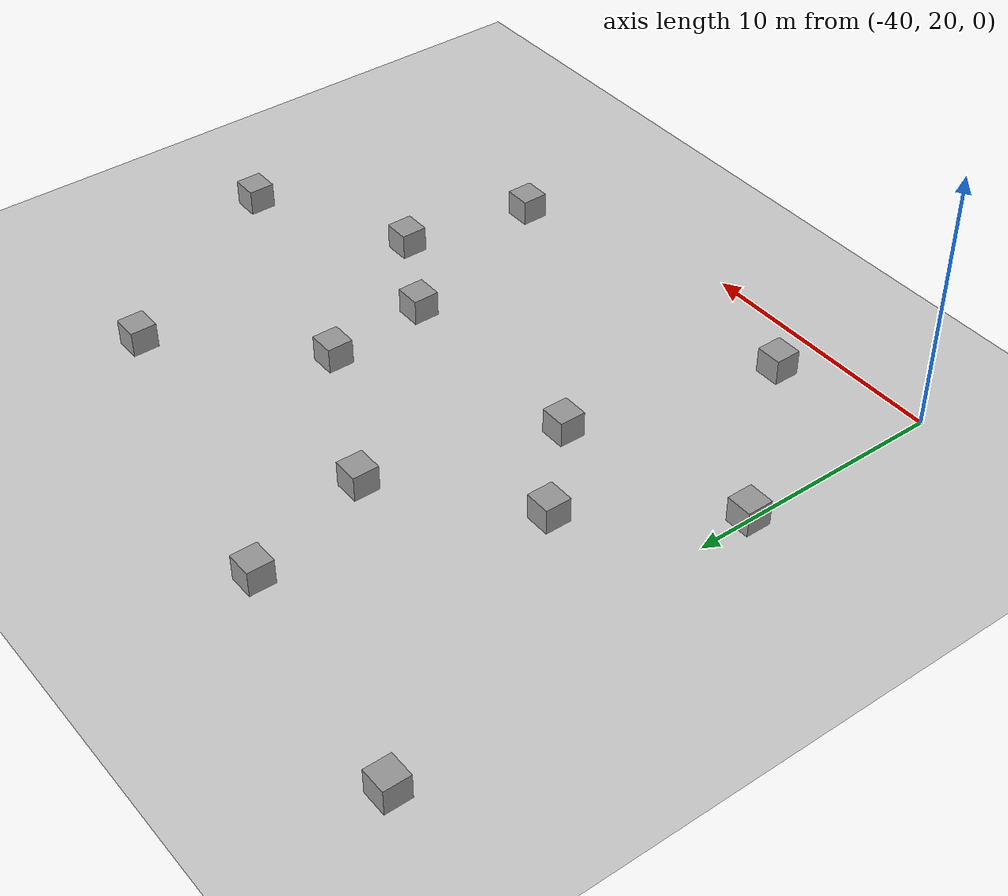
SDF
<sdf version="1.7">
 <world name="default">
  <model name="ground_plane">
   <static>1</static>
   <link name="link">
    <collision name="collision">
     <geometry><plane><normal>0 0 1</normal><size>100 100</size></plane></geometry>
     <surface><friction><ode><mu>100</mu><mu2>50</mu2></ode></friction></surface>
    </collision>
    <visual name="visual">
     <cast_shadows>0</cast_shadows>
     <geometry><plane><normal>0 0 1</normal><size>100 100</size></plane></geometry>
     <material>
      <script><uri>file://media/materials/scripts/gazebo.material</uri><name>Gazebo/Grey</name></script>
     </material>
    </visual>
   </link>
  </model>
  <model name="unit_box_47_clone_7">
   <pose>-20 39 0.499995 -1e-05 0 0</pose>
   <link name="link">
    <inertial>
     <mass>1</mass>
     <inertia>
      <ixx>0.166667</ixx>
      <ixy>0</ixy>
      <ixz>0</ixz>
      <iyy>0.166667</iyy>
      <iyz>0</iyz>
      <izz>0.166667</izz>
     </inertia>
    </inertial>
    <collision name="collision"><geometry><box><size>1 1 1</size></box></geometry></collision>
    <visual name="visual">
     <geometry><box><size>1 1 1</size></box></geometry>
     <material>
      <script><name>Gazebo/Grey</name><uri>file://media/materials/scripts/gazebo.material</uri></script>
     </material>
    </visual>
   </link>
  </model>
  <model name="unit_box_47_clone_8">
   <pose>-33 30 0.499995 0 -1e-05 0</pose>
   <link name="link">
    <inertial>
     <mass>1</mass>
     <inertia>
      <ixx>0.166667</ixx>
      <ixy>0</ixy>
      <ixz>0</ixz>
      <iyy>0.166667</iyy>
      <iyz>0</iyz>
      <izz>0.166667</izz>
     </inertia>
    </inertial>
    <collision name="collision"><geometry><box><size>1 1 1</size></box></geometry></collision>
    <visual name="visual">
     <geometry><box><size>1 1 1</size></box></geometry>
     <material>
      <script><name>Gazebo/Grey</name><uri>file://media/materials/scripts/gazebo.material</uri></script>
     </material>
    </visual>
   </link>
  </model>
  <model name="unit_box_47_clone_10">
   <pose>-15 31 0.499995 0 -1e-05 0</pose>
   <link name="link">
    <inertial>
     <mass>1</mass>
     <inertia>
      <ixx>0.166667</ixx>
      <ixy>0</ixy>
      <ixz>0</ixz>
      <iyy>0.166667</iyy>
      <iyz>0</iyz>
      <izz>0.166667</izz>
     </inertia>
    </inertial>
    <collision name="collision"><geometry><box><size>1 1 1</size></box></geometry></collision>
    <visual name="visual">
     <geometry><box><size>1 1 1</size></box></geometry>
     <material>
      <script><name>Gazebo/Grey</name><uri>file://media/materials/scripts/gazebo.material</uri></script>
     </material>
    </visual>
   </link>
  </model>
  <model name="unit_box_47_clone_11">
   <pose>-42 43.4384 0.499995 -1e-05 0 0</pose>
   <link name="link">
    <inertial>
     <mass>1</mass>
     <inertia>
      <ixx>0.166667</ixx>
      <ixy>0</ixy>
      <ixz>0</ixz>
      <iyy>0.166667</iyy>
      <iyz>0</iyz>
      <izz>0.166667</izz>
     </inertia>
    </inertial>
    <collision name="collision"><geometry><box><size>1 1 1</size></box></geometry></collision>
    <visual name="visual">
     <geometry><box><size>1 1 1</size></box></geometry>
     <material>
      <script><name>Gazebo/Grey</name><uri>file://media/materials/scripts/gazebo.material</uri></script>
     </material>
    </visual>
   </link>
  </model>
  <model name="unit_box_47_clone_12">
   <pose>-32.594 41.9919 0.499995 -1e-05 0 0</pose>
   <link name="link">
    <inertial>
     <mass>1</mass>
     <inertia>
      <ixx>0.166667</ixx>
      <ixy>0</ixy>
      <ixz>0</ixz>
      <iyy>0.166667</iyy>
      <iyz>0</iyz>
      <izz>0.166667</izz>
     </inertia>
    </inertial>
    <collision name="collision"><geometry><box><size>1 1 1</size></box></geometry></collision>
    <visual name="visual">
     <geometry><box><size>1 1 1</size></box></geometry>
     <material>
      <script><name>Gazebo/Grey</name><uri>file://media/materials/scripts/gazebo.material</uri></script>
     </material>
    </visual>
   </link>
  </model>
  <model name="unit_box_47_clone_16">
   <pose>-40 28 0.499995 1e-05 -0 -5e-06</pose>
   <link name="link">
    <inertial>
     <mass>1</mass>
     <inertia>
      <ixx>0.166667</ixx>
      <ixy>0</ixy>
      <ixz>0</ixz>
      <iyy>0.166667</iyy>
      <iyz>0</iyz>
      <izz>0.166667</izz>
     </inertia>
    </inertial>
    <collision name="collision"><geometry><box><size>1 1 1</size></box></geometry></collision>
    <visual name="visual">
     <geometry><box><size>1 1 1</size></box></geometry>
     <material>
      <script><name>Gazebo/Grey</name><uri>file://media/materials/scripts/gazebo.material</uri></script>
     </material>
    </visual>
   </link>
  </model>
  <model name="unit_box_55_clone_3">
   <pose>-35 22 0.499995 1e-05 -0 0</pose>
   <link name="link">
    <inertial>
     <mass>1</mass>
     <inertia>
      <ixx>0.166667</ixx>
      <ixy>0</ixy>
      <ixz>0</ixz>
      <iyy>0.166667</iyy>
      <iyz>0</iyz>
      <izz>0.166667</izz>
     </inertia>
    </inertial>
    <collision name="collision"><geometry><box><size>1 1 1</size></box></geometry></collision>
    <visual name="visual">
     <geometry><box><size>1 1 1</size></box></geometry>
     <material>
      <script><name>Gazebo/Grey</name><uri>file://media/materials/scripts/gazebo.material</uri></script>
     </material>
    </visual>
   </link>
  </model>
  <model name="unit_box_55_clone_5">
   <pose>-22 23 0.5 0 -0 0</pose>
   <link name="link">
    <inertial>
     <mass>1</mass>
     <inertia>
      <ixx>0.166667</ixx>
      <ixy>0</ixy>
      <ixz>0</ixz>
      <iyy>0.166667</iyy>
      <iyz>0</iyz>
      <izz>0.166667</izz>
     </inertia>
    </inertial>
    <collision name="collision"><geometry><box><size>1 1 1</size></box></geometry></collision>
    <visual name="visual">
     <geometry><box><size>1 1 1</size></box></geometry>
     <material>
      <script><name>Gazebo/Grey</name><uri>file://media/materials/scripts/gazebo.material</uri></script>
     </material>
    </visual>
   </link>
  </model>
  <model name="unit_box_55_clone_9">
   <pose>-21 28 0.5 0 -0 0</pose>
   <link name="link">
    <inertial>
     <mass>1</mass>
     <inertia>
      <ixx>0.166667</ixx>
      <ixy>0</ixy>
      <ixz>0</ixz>
      <iyy>0.166667</iyy>
      <iyz>0</iyz>
      <izz>0.166667</izz>
     </inertia>
    </inertial>
    <collision name="collision"><geometry><box><size>1 1 1</size></box></geometry></collision>
    <visual name="visual">
     <geometry><box><size>1 1 1</size></box></geometry>
     <material>
      <script><name>Gazebo/Grey</name><uri>file://media/materials/scripts/gazebo.material</uri></script>
     </material>
    </visual>
   </link>
  </model>
  <model name="unit_box_55_clone_10">
   <pose>-24.572 30 0.5 0 -0 0</pose>
   <link name="link">
    <inertial>
     <mass>1</mass>
     <inertia>
      <ixx>0.166667</ixx>
      <ixy>0</ixy>
      <ixz>0</ixz>
      <iyy>0.166667</iyy>
      <iyz>0</iyz>
      <izz>0.166667</izz>
     </inertia>
    </inertial>
    <collision name="collision"><geometry><box><size>1 1 1</size></box></geometry></collision>
    <visual name="visual">
     <geometry><box><size>1 1 1</size></box></geometry>
     <material>
      <script><name>Gazebo/Grey</name><uri>file://media/materials/scripts/gazebo.material</uri></script>
     </material>
    </visual>
   </link>
  </model>
  <model name="unit_box_55_clone_11">
   <pose>-25 34 0.5 0 -0 0</pose>
   <link name="link">
    <inertial>
     <mass>1</mass>
     <inertia>
      <ixx>0.166667</ixx>
      <ixy>0</ixy>
      <ixz>0</ixz>
      <iyy>0.166667</iyy>
      <iyz>0</iyz>
      <izz>0.166667</izz>
     </inertia>
    </inertial>
    <collision name="collision"><geometry><box><size>1 1 1</size></box></geometry></collision>
    <visual name="visual">
     <geometry><box><size>1 1 1</size></box></geometry>
     <material>
      <script><name>Gazebo/Grey</name><uri>file://media/materials/scripts/gazebo.material</uri></script>
     </material>
    </visual>
   </link>
  </model>
  <model name="unit_box_55_clone_12">
   <pose>-31 37 0.499995 1e-05 -0 0</pose>
   <link name="link">
    <inertial>
     <mass>1</mass>
     <inertia>
      <ixx>0.166667</ixx>
      <ixy>0</ixy>
      <ixz>0</ixz>
      <iyy>0.166667</iyy>
      <iyz>0</iyz>
      <izz>0.166667</izz>
     </inertia>
    </inertial>
    <collision name="collision"><geometry><box><size>1 1 1</size></box></geometry></collision>
    <visual name="visual">
     <geometry><box><size>1 1 1</size></box></geometry>
     <material>
      <script><name>Gazebo/Grey</name><uri>file://media/materials/scripts/gazebo.material</uri></script>
     </material>
    </visual>
   </link>
  </model>
  <model name="unit_box_55_clone_13">
   <pose>-36 33 0.5 0 -0 0</pose>
   <link name="link">
    <inertial>
     <mass>1</mass>
     <inertia>
      <ixx>0.166667</ixx>
      <ixy>0</ixy>
      <ixz>0</ixz>
      <iyy>0.166667</iyy>
      <iyz>0</iyz>
      <izz>0.166667</izz>
     </inertia>
    </inertial>
    <collision name="collision"><geometry><box><size>1 1 1</size></box></geometry></collision>
    <visual name="visual">
     <geometry><box><size>1 1 1</size></box></geometry>
     <material>
      <script><name>Gazebo/Grey</name><uri>file://media/materials/scripts/gazebo.material</uri></script>
     </material>
    </visual>
   </link>
  </model>
 </world>
</sdf>
